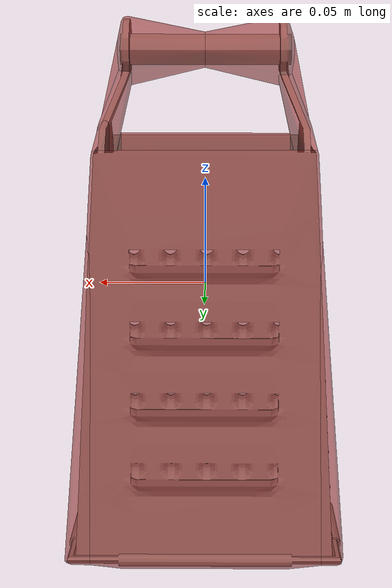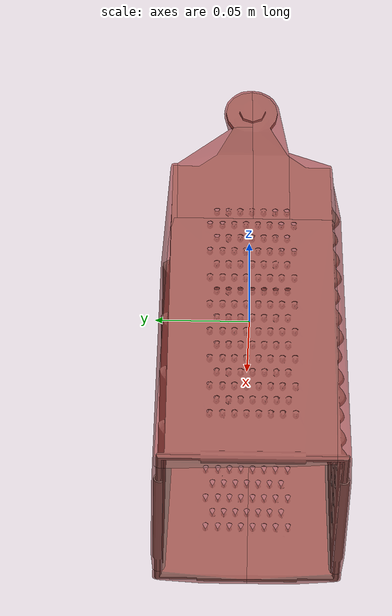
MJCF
<mujoco model="model">
  <option timestep="0.002" gravity="0.0 0.0 -9.81"/>
  <compiler angle="radian"/>
  <asset>
    <mesh file="visual/CheeseGrater010.obj" name="CheeseGrater010_vis"/>
    <texture file="visual/T_BC001.png" name="CheeseGrater010_material" type="2d"/>
    <material name="CheeseGrater010_material" rgba="1 1 1 1.0" texture="CheeseGrater010_material" shininess="0.1" specular="3"/>
    <mesh file="collision/collision_mesh_collision_0.obj" name="CheeseGrater010_collision_mesh_0"/>
    <mesh file="collision/collision_mesh_collision_1.obj" name="CheeseGrater010_collision_mesh_1"/>
    <mesh file="collision/collision_mesh_collision_2.obj" name="CheeseGrater010_collision_mesh_2"/>
    <mesh file="collision/collision_mesh_collision_3.obj" name="CheeseGrater010_collision_mesh_3"/>
    <mesh file="collision/collision_mesh_collision_4.obj" name="CheeseGrater010_collision_mesh_4"/>
    <mesh file="collision/collision_mesh_collision_5.obj" name="CheeseGrater010_collision_mesh_5"/>
    <mesh file="collision/collision_mesh_collision_6.obj" name="CheeseGrater010_collision_mesh_6"/>
    <mesh file="collision/collision_mesh_collision_7.obj" name="CheeseGrater010_collision_mesh_7"/>
    <mesh file="collision/collision_mesh_collision_8.obj" name="CheeseGrater010_collision_mesh_8"/>
    <mesh file="collision/collision_mesh_collision_9.obj" name="CheeseGrater010_collision_mesh_9"/>
    <mesh file="collision/collision_mesh_collision_10.obj" name="CheeseGrater010_collision_mesh_10"/>
    <mesh file="collision/collision_mesh_collision_11.obj" name="CheeseGrater010_collision_mesh_11"/>
    <mesh file="collision/collision_mesh_collision_12.obj" name="CheeseGrater010_collision_mesh_12"/>
    <mesh file="collision/collision_mesh_collision_13.obj" name="CheeseGrater010_collision_mesh_13"/>
  </asset>
  <default>
    <default class="visual">
      <geom conaffinity="0" contype="0" group="1" type="mesh"/>
    </default>
    <default class="collision">
      <geom group="0" rgba="0.5 0 0 0.5" density="1.0" solref="0.004 1" solimp="0.998 0.998 0.001"/>
    </default>
    <default class="spawn">
      <geom group="0" rgba="1 1 1 0.5" contype="0" conaffinity="0"/>
      <site group="0" rgba="1 1 1 0.5"/>
    </default>
    <default class="region">
      <geom group="1" conaffinity="0" contype="0" rgba="0 1 0 0" mass="0"/>
    </default>
  </default>
  <worldbody>
    <body>
      <body name="object">
        <geom mesh="CheeseGrater010_vis" type="mesh" solimp="0.998 0.998 0.001" solref="0.001 1" friction="0.95 0.3 0.1" class="visual" material="CheeseGrater010_material"/>
        <geom class="region" name="reg_bbox" type="box" pos="0.0 0.0 3.642999999999702e-05" size="0.06514004 0.05082695 0.12480300999999999"/>
        <geom mesh="CheeseGrater010_collision_mesh_0" type="mesh" class="collision"/>
        <geom mesh="CheeseGrater010_collision_mesh_1" type="mesh" class="collision"/>
        <geom mesh="CheeseGrater010_collision_mesh_2" type="mesh" class="collision"/>
        <geom mesh="CheeseGrater010_collision_mesh_3" type="mesh" class="collision"/>
        <geom mesh="CheeseGrater010_collision_mesh_4" type="mesh" class="collision"/>
        <geom mesh="CheeseGrater010_collision_mesh_5" type="mesh" class="collision"/>
        <geom mesh="CheeseGrater010_collision_mesh_6" type="mesh" class="collision"/>
        <geom mesh="CheeseGrater010_collision_mesh_7" type="mesh" class="collision"/>
        <geom mesh="CheeseGrater010_collision_mesh_8" type="mesh" class="collision"/>
        <geom mesh="CheeseGrater010_collision_mesh_9" type="mesh" class="collision"/>
        <geom mesh="CheeseGrater010_collision_mesh_10" type="mesh" class="collision"/>
        <geom mesh="CheeseGrater010_collision_mesh_11" type="mesh" class="collision"/>
        <geom mesh="CheeseGrater010_collision_mesh_12" type="mesh" class="collision"/>
        <geom mesh="CheeseGrater010_collision_mesh_13" type="mesh" class="collision"/>
      </body>
    </body>
  </worldbody>
  <actuator/>
</mujoco>
